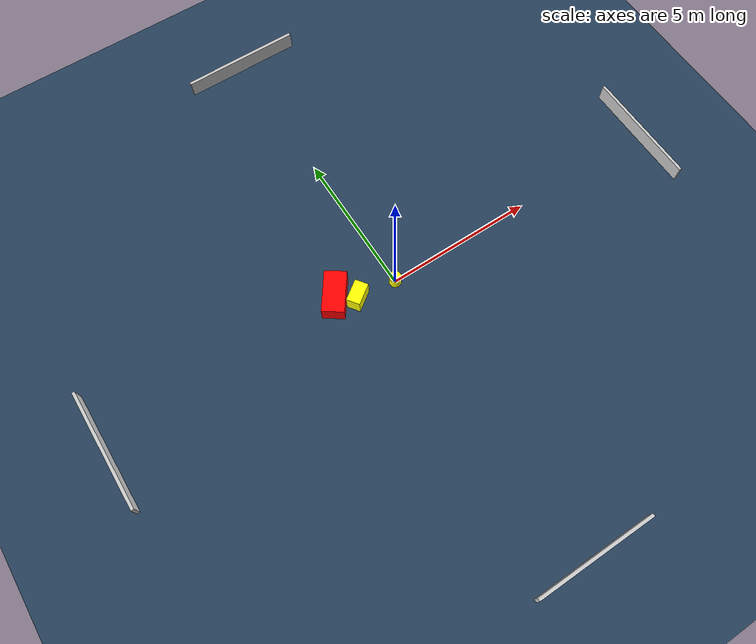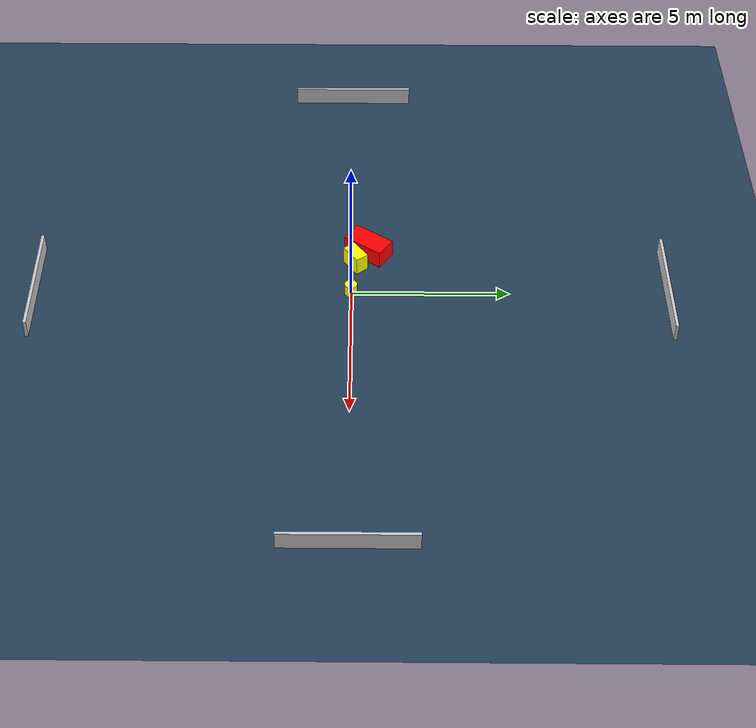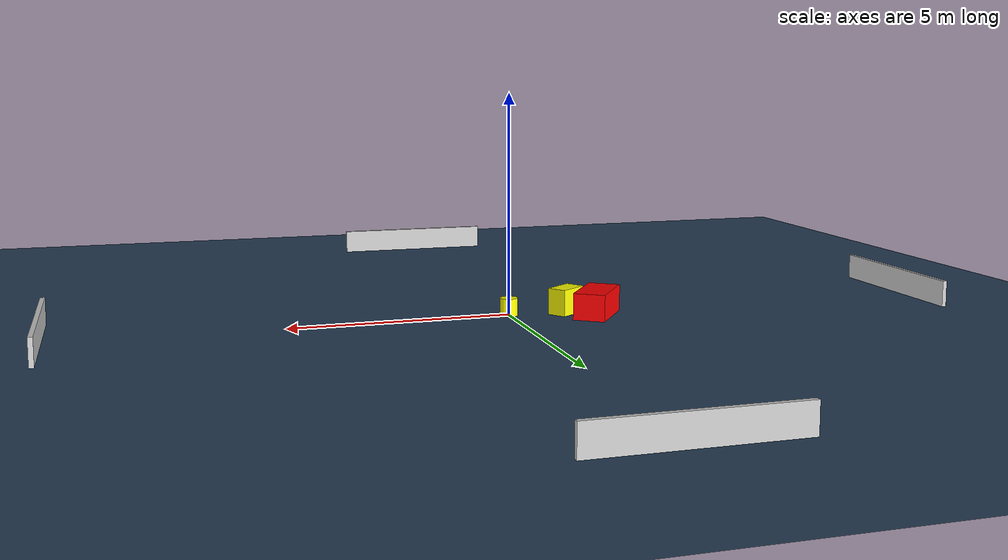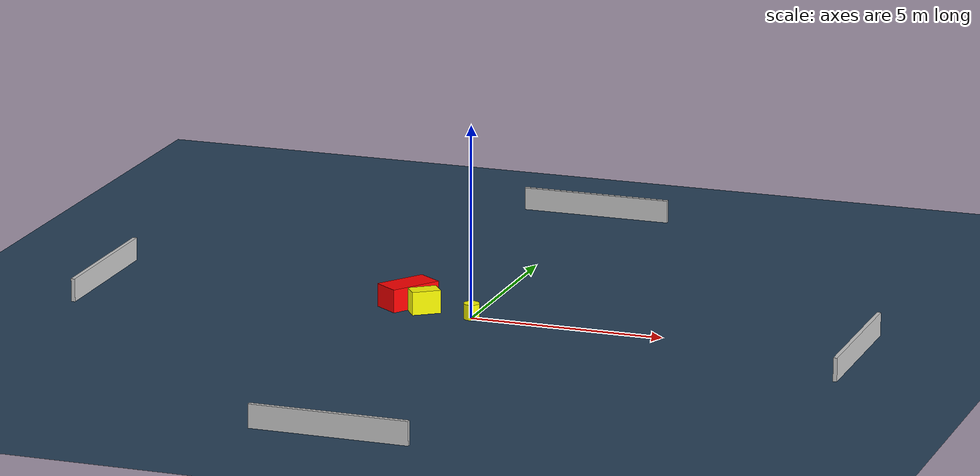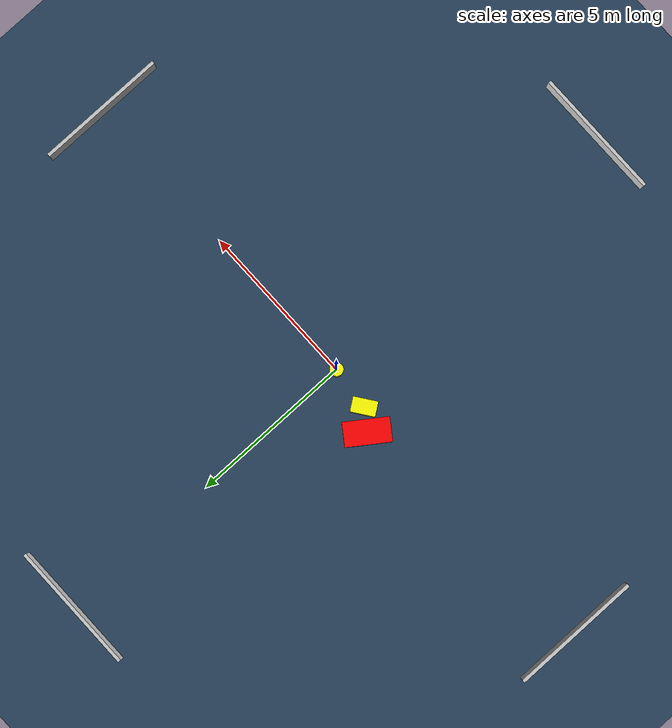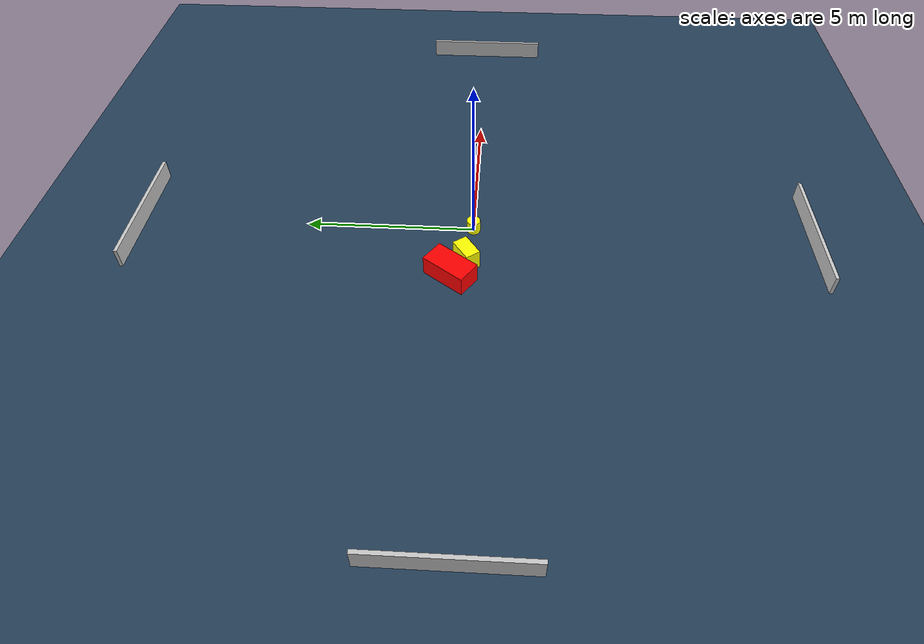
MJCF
<?xml version="1.0" ?>
<mujoco model="generated_environment">
  <option timestep="0.01" integrator="RK4" cone="elliptic"/>
  <default>
    <geom density="1"/>
  </default>
  <asset>
    <texture builtin="gradient" height="3072" name="skybox" rgb1="0.3 0.5 0.7" rgb2="0 0 0" type="skybox" width="512"/>
    <texture builtin="checker" height="300" name="groundplane" rgb1="0.2 0.3 0.4" rgb2="0.1 0.2 0.3" type="2d" width="300"/>
    <material name="groundplane" reflectance="0.2" texrepeat="5 5" texture="groundplane"/>
  </asset>
  <worldbody>
    <light dir="0 0 -1" directional="true" pos="0 0 1.5"/>
    <geom condim="3" friction="0.5 0.005 0.001" material="groundplane" name="floor" pos="0 0 0" size="0 0 0.05" type="plane"/>
    <body name="walls">
      <geom name="wall_1" condim="4" pos="-10.0 0.0 0.3" rgba="0.800000011920929 0.800000011920929 0.800000011920929 1.0" size="0.05 2.0 0.3" type="box"/>
      <geom name="wall_2" condim="4" pos="10.0 0.0 0.3" rgba="0.800000011920929 0.800000011920929 0.800000011920929 1.0" size="0.05 2.0 0.3" type="box"/>
      <geom name="wall_3" condim="4" pos="0.0 -10.0 0.3" rgba="0.800000011920929 0.800000011920929 0.800000011920929 1.0" size="2.0 0.05 0.3" type="box"/>
      <geom name="wall_4" condim="4" pos="0.0 10.0 0.3" rgba="0.800000011920929 0.800000011920929 0.800000011920929 1.0" size="2.0 0.05 0.3" type="box"/>
    </body>
    <body name="robot">
      <joint name="joint_x" type="slide" pos="0 0 0" axis="1 0 0"/>
      <joint name="joint_y" type="slide" pos="0 0 0" axis="0 1 0"/>
      <geom name="robot" type="cylinder" pos="0.0 0.0 0.2" size="0.2 0.2 0.0" mass="5.0" friction="1.0 0.005 0.0001" condim="4" rgba="1.0 1.0 0.0 1.0"/>
    </body>
    <body name="obstacle_1_movable">
      <geom name="obstacle_1_movable" condim="4" pos="-1.3116508949154295 0.13694535027884067 0.3" euler="0 0 305.73949542833753" friction="0.0 0.005 0.001" rgba="1.0 1.0 0.0 1.0" size="0.22367367931562876 0.36651084581107213 0.3" type="box" mass="0.1"/>
      <joint type="free"/>
    </body>
    <body name="obstacle_2_static">
      <geom name="obstacle_2_static" condim="4" pos="-1.9002884494415173 0.5548273903752303 0.3" euler="0 0 54.916364518057954" friction="0.0 0.005 0.001" rgba="1.0 0.0 0.0 1.0" size="0.685602790800852 0.3617732108828651 0.3" type="box"/>
    </body>
  </worldbody>
  <actuator>
    <motor name="actuator_x" joint="joint_x" gear="1" ctrlrange="-1 1"/>
    <motor name="actuator_y" joint="joint_y" gear="1" ctrlrange="-1 1"/>
  </actuator>
</mujoco>
